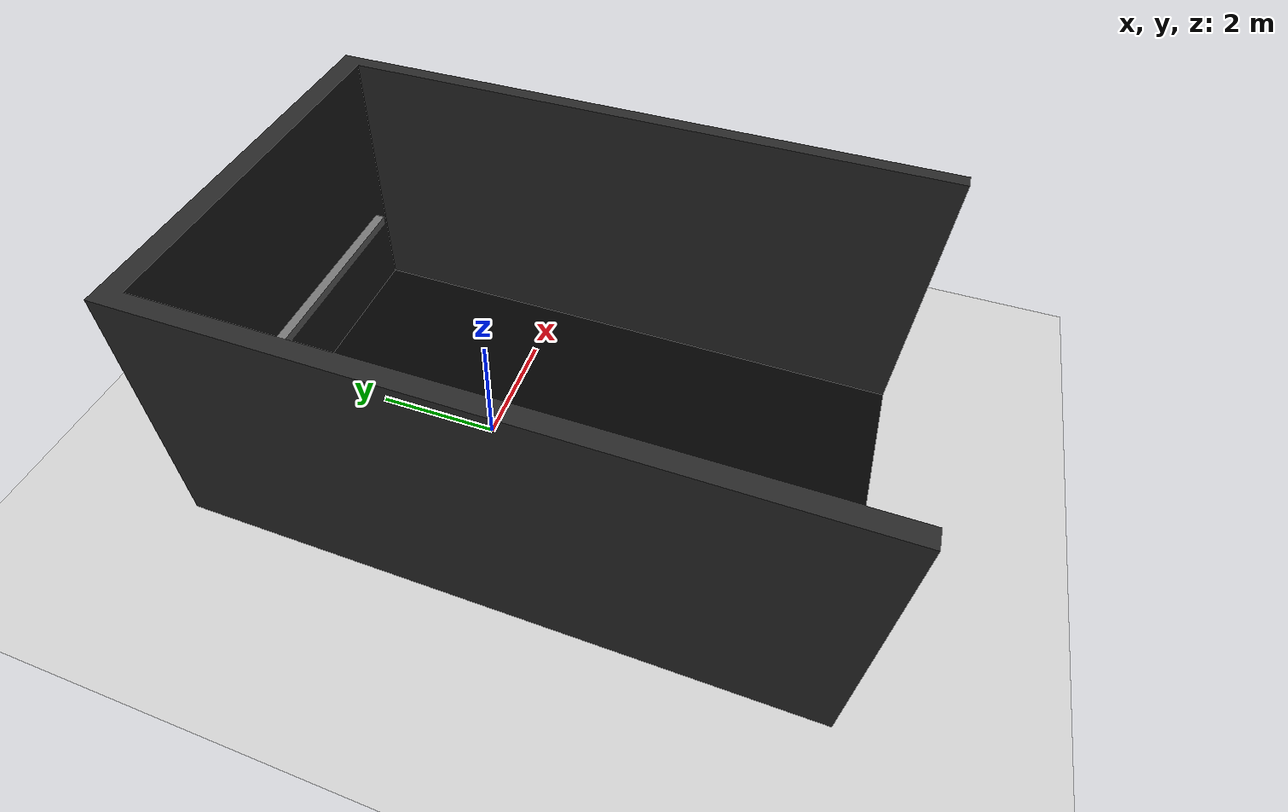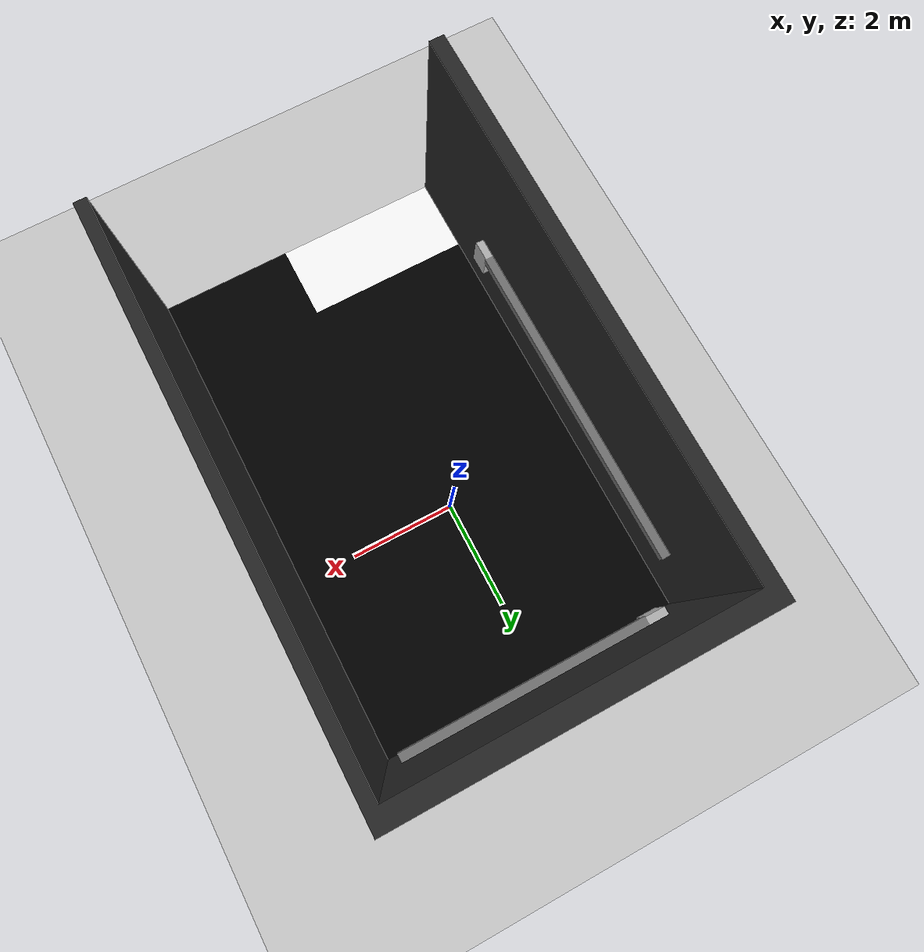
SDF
<?xml version="1.0" ?>
<sdf version="1.5">
  <world name="default">

    <!-- Simple light source, the sun -->
    <include>
      <uri>model://sun</uri>
    </include>

    <!-- Brighter light source for the blackroom -->
    <light type="point" name="point_light">
      <pose>0 0 4 0 0 0</pose>
      <attenuation>
        <range>20</range>
        <linear>0.2</linear>
        <constant>0.8</constant>
        <quadratic>0.01</quadratic>
      </attenuation>
      <cast_shadows>false</cast_shadows>
    </light>

    <!-- Bottom surface plane, the ground -->
    <include>
      <uri>model://ground_plane</uri>
    </include>

    <!-- Model of the ARCL spaceroom -->
    <include>
      <uri>model://blackroom</uri>
      <name>blackroom</name>
      <pose>-0.04 -0.725 0 0 0 0</pose>
    </include>
  </world>
</sdf>

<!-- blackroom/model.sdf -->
<sdf version="1.5">
  <model name="blackroom">
    <static>true</static>
    <link name="link">
      <!-- Blackroom centered such that to match origin of virtual world is
      aligned with the origin in the Vicon frame -->
      <pose>0.21 -0.475 -0.24 0 0 0</pose>

      <!-- Visual properties of the simplified ARCL spaceroom using a mesh -->
      <visual name="visual">
        <geometry>
          <mesh>
            <uri>model://blackroom/mesh/blackroom_v2.dae</uri>
          </mesh>
        </geometry>
      </visual>

      <collision name="main_floor_collision">
        <pose>0 -0.225 0.125 0 0 0</pose>
        <geometry>
          <box>
            <size>5.76 9.50 0.25</size>
          </box>
        </geometry>
        <surface>
          <friction>
            <ode>
              <mu>0.0001</mu>
              <mu2>0.0001</mu2>
            </ode>
      	    <torsional>
      	      <coefficient>0.0</coefficient>
      	    </torsional>
          </friction>
          <contact>
            <ode>
              <min_depth>0.1</min_depth>
            </ode>
          </contact>
        </surface>
      </collision>

      <collision name='sticky_mat_collision'>
        <pose>-1.29 -4.15 0.125 0 0 0</pose>
        <geometry>
          <box>
            <size>3.18 1.45 0.25</size>
          </box>
        </geometry>
        <surface>
          <friction>
            <ode>
              <mu>1000.0</mu>
              <mu2>1000.0</mu2>
            </ode>
          </friction>
        </surface>
      </collision>

      <collision name='left_wall'>
        <pose>-2.975 0 2.46 0 0 0</pose>
        <geometry>
          <box>
            <size>0.25 9.5 4.42</size>
          </box>
        </geometry>
        <surface>
          <friction>
            <ode>
              <mu>0</mu>
              <mu2>0</mu2>
            </ode>
          </friction>
        </surface>
      </collision>

      <collision name='back_wall'>
        <pose>0 4.75 2.46 0 0 0</pose>
        <geometry>
          <box>
            <size>5.76 0.25 4.42</size>
          </box>
        </geometry>
        <surface>
          <friction>
            <ode>
              <mu>0</mu>
              <mu2>0</mu2>
            </ode>
          </friction>
        </surface>
      </collision>

      <collision name='right_wall'>
        <pose>3.005 0 2.46 0 0 0</pose>
        <geometry>
          <box>
            <size>0.25 9.5 4.42</size>
          </box>
        </geometry>
        <surface>
          <friction>
            <ode>
              <mu>0</mu>
              <mu2>0</mu2>
            </ode>
          </friction>
        </surface>
      </collision>

    </link>
  </model>
</sdf>
